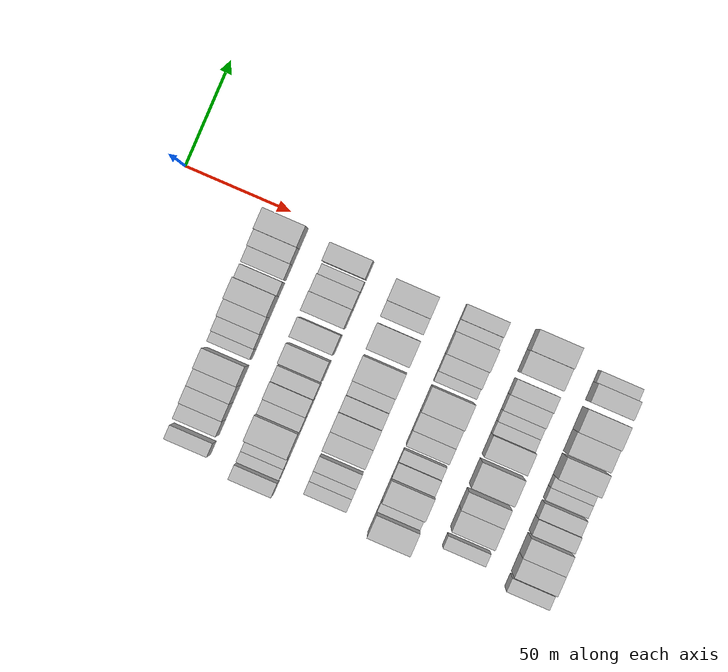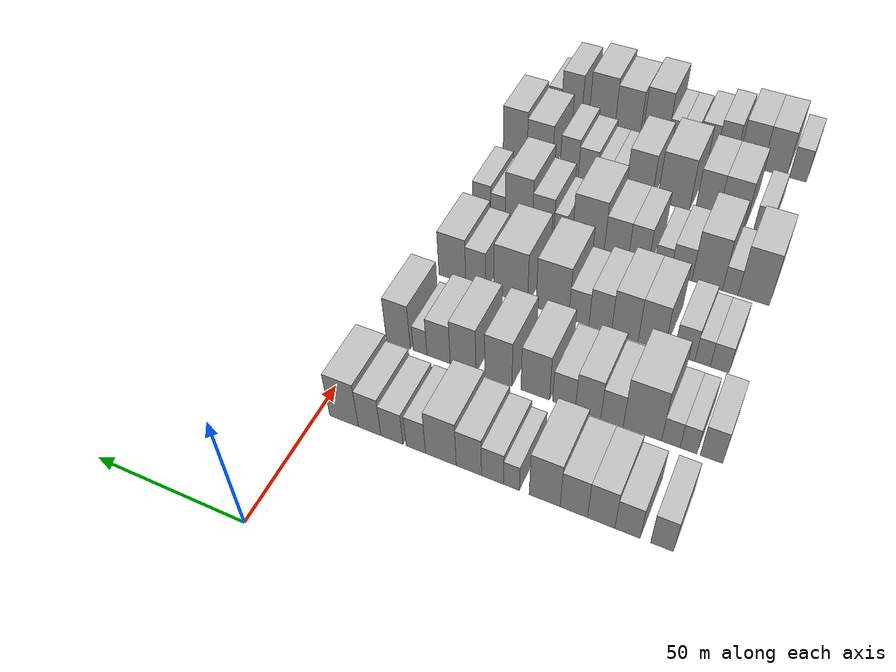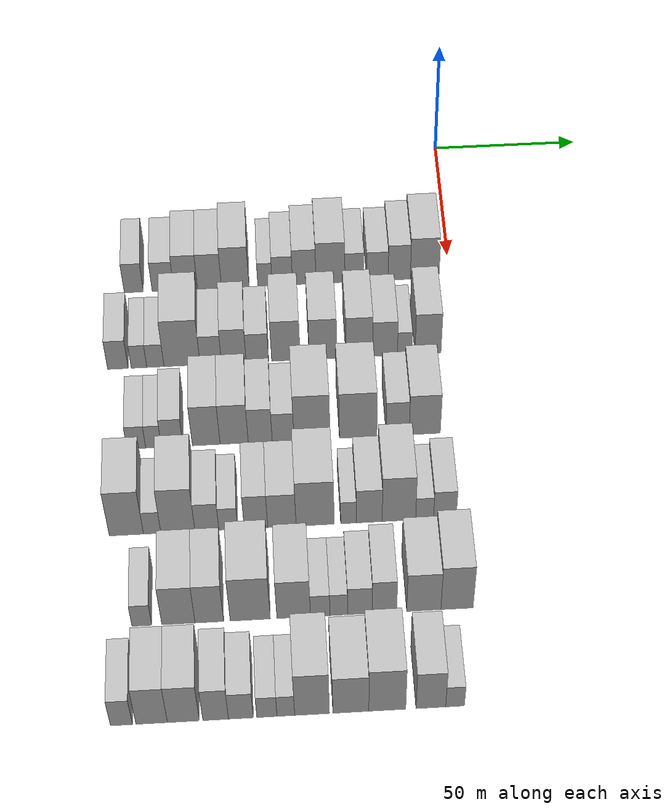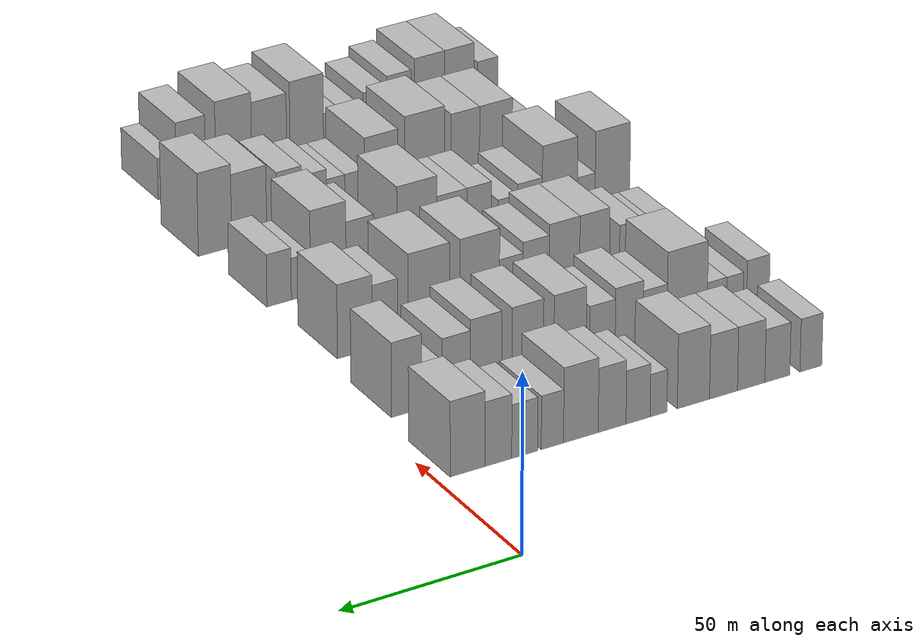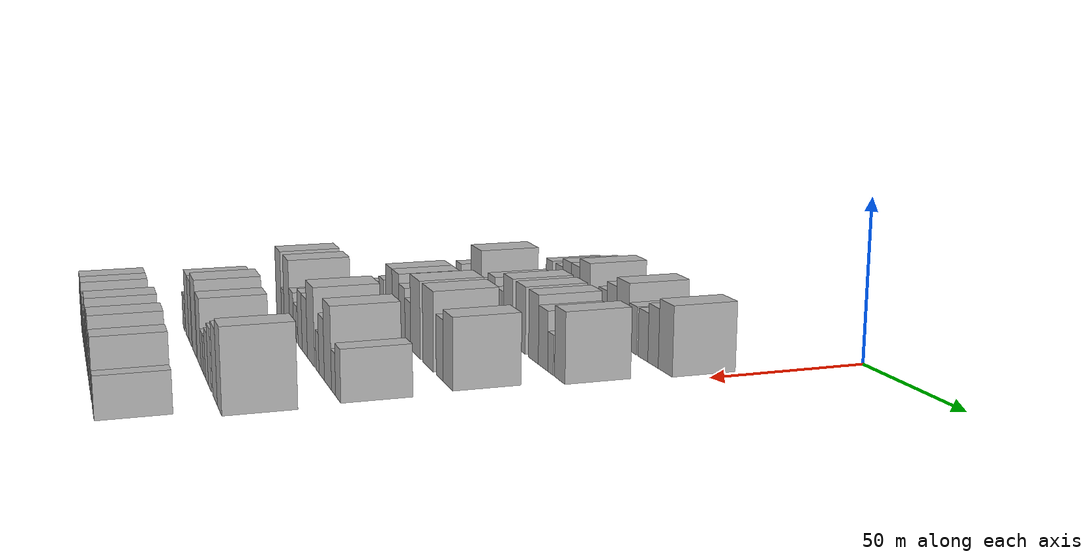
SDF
<sdf version="1.6">
 <world name="default">
  <model name="building_51">
   <static>1</static>
   <pose>50.0000 -107.6121 0 0.000000 0.000000 0.000000</pose>
   <link name="link">
    <pose>0 0 7.50 0 0 0</pose>
    <collision name="collision"><geometry><box><size>20.0000 6.4456 15.0000</size></box></geometry></collision>
    <visual name="visual">
     <cast_shadows>0</cast_shadows>
     <geometry><box><size>20.0000 6.4456 15.0000</size></box></geometry>
     <material>
      <script>
       <uri>model://HANNAS_wall/materials/scripts</uri>
       <uri>model://HANNAS_wall/materials/textures</uri>
       <name>vrc/HANNAS_wall</name>
      </script>
     </material>
    </visual>
   </link>
  </model>
  <model name="building_52">
   <static>1</static>
   <pose>50.0000 -97.7280 0 0.000000 0.000000 0.000000</pose>
   <link name="link">
    <pose>0 0 7.50 0 0 0</pose>
    <collision name="collision"><geometry><box><size>20.0000 7.3226 15.0000</size></box></geometry></collision>
    <visual name="visual">
     <cast_shadows>0</cast_shadows>
     <geometry><box><size>20.0000 7.3226 15.0000</size></box></geometry>
     <material>
      <script>
       <uri>model://HANNAS_wall/materials/scripts</uri>
       <uri>model://HANNAS_wall/materials/textures</uri>
       <name>vrc/HANNAS_wall</name>
      </script>
     </material>
    </visual>
   </link>
  </model>
  <model name="building_53">
   <static>1</static>
   <pose>50.0000 -90.0425 0 0.000000 0.000000 0.000000</pose>
   <link name="link">
    <pose>0 0 9.00 0 0 0</pose>
    <collision name="collision"><geometry><box><size>20.0000 8.0486 18.0000</size></box></geometry></collision>
    <visual name="visual">
     <cast_shadows>0</cast_shadows>
     <geometry><box><size>20.0000 8.0486 18.0000</size></box></geometry>
     <material>
      <script>
       <uri>model://HANNAS_wall/materials/scripts</uri>
       <uri>model://HANNAS_wall/materials/textures</uri>
       <name>vrc/HANNAS_wall</name>
      </script>
     </material>
    </visual>
   </link>
  </model>
  <model name="building_54">
   <static>1</static>
   <pose>50.0000 -81.9507 0 0.000000 0.000000 0.000000</pose>
   <link name="link">
    <pose>0 0 9.00 0 0 0</pose>
    <collision name="collision"><geometry><box><size>20.0000 8.1349 18.0000</size></box></geometry></collision>
    <visual name="visual">
     <cast_shadows>0</cast_shadows>
     <geometry><box><size>20.0000 8.1349 18.0000</size></box></geometry>
     <material>
      <script>
       <uri>model://HANNAS_wall/materials/scripts</uri>
       <uri>model://HANNAS_wall/materials/textures</uri>
       <name>vrc/HANNAS_wall</name>
      </script>
     </material>
    </visual>
   </link>
  </model>
  <model name="building_55">
   <static>1</static>
   <pose>50.0000 -73.2040 0 0.000000 0.000000 0.000000</pose>
   <link name="link">
    <pose>0 0 10.50 0 0 0</pose>
    <collision name="collision"><geometry><box><size>20.0000 9.3585 21.0000</size></box></geometry></collision>
    <visual name="visual">
     <cast_shadows>0</cast_shadows>
     <geometry><box><size>20.0000 9.3585 21.0000</size></box></geometry>
     <material>
      <script>
       <uri>model://HANNAS_wall/materials/scripts</uri>
       <uri>model://HANNAS_wall/materials/textures</uri>
       <name>vrc/HANNAS_wall</name>
      </script>
     </material>
    </visual>
   </link>
  </model>
  <model name="building_56">
   <static>1</static>
   <pose>50.0000 -63.0853 0 0.000000 0.000000 0.000000</pose>
   <link name="link">
    <pose>0 0 6.00 0 0 0</pose>
    <collision name="collision"><geometry><box><size>20.0000 4.8790 12.0000</size></box></geometry></collision>
    <visual name="visual">
     <cast_shadows>0</cast_shadows>
     <geometry><box><size>20.0000 4.8790 12.0000</size></box></geometry>
     <material>
      <script>
       <uri>model://HANNAS_wall/materials/scripts</uri>
       <uri>model://HANNAS_wall/materials/textures</uri>
       <name>vrc/HANNAS_wall</name>
      </script>
     </material>
    </visual>
   </link>
  </model>
  <model name="building_57">
   <static>1</static>
   <pose>50.0000 -57.1907 0 0.000000 0.000000 0.000000</pose>
   <link name="link">
    <pose>0 0 7.50 0 0 0</pose>
    <collision name="collision"><geometry><box><size>20.0000 6.9101 15.0000</size></box></geometry></collision>
    <visual name="visual">
     <cast_shadows>0</cast_shadows>
     <geometry><box><size>20.0000 6.9101 15.0000</size></box></geometry>
     <material>
      <script>
       <uri>model://HANNAS_wall/materials/scripts</uri>
       <uri>model://HANNAS_wall/materials/textures</uri>
       <name>vrc/HANNAS_wall</name>
      </script>
     </material>
    </visual>
   </link>
  </model>
  <model name="building_58">
   <static>1</static>
   <pose>50.0000 -49.7374 0 0.000000 0.000000 0.000000</pose>
   <link name="link">
    <pose>0 0 9.00 0 0 0</pose>
    <collision name="collision"><geometry><box><size>20.0000 7.9965 18.0000</size></box></geometry></collision>
    <visual name="visual">
     <cast_shadows>0</cast_shadows>
     <geometry><box><size>20.0000 7.9965 18.0000</size></box></geometry>
     <material>
      <script>
       <uri>model://HANNAS_wall/materials/scripts</uri>
       <uri>model://HANNAS_wall/materials/textures</uri>
       <name>vrc/HANNAS_wall</name>
      </script>
     </material>
    </visual>
   </link>
  </model>
  <model name="building_59">
   <static>1</static>
   <pose>50.0000 -40.7983 0 0.000000 0.000000 0.000000</pose>
   <link name="link">
    <pose>0 0 10.50 0 0 0</pose>
    <collision name="collision"><geometry><box><size>20.0000 9.8819 21.0000</size></box></geometry></collision>
    <visual name="visual">
     <cast_shadows>0</cast_shadows>
     <geometry><box><size>20.0000 9.8819 21.0000</size></box></geometry>
     <material>
      <script>
       <uri>model://HANNAS_wall/materials/scripts</uri>
       <uri>model://HANNAS_wall/materials/textures</uri>
       <name>vrc/HANNAS_wall</name>
      </script>
     </material>
    </visual>
   </link>
  </model>
  <model name="building_60">
   <static>1</static>
   <pose>50.0000 -32.6744 0 0.000000 0.000000 0.000000</pose>
   <link name="link">
    <pose>0 0 7.50 0 0 0</pose>
    <collision name="collision"><geometry><box><size>20.0000 6.3658 15.0000</size></box></geometry></collision>
    <visual name="visual">
     <cast_shadows>0</cast_shadows>
     <geometry><box><size>20.0000 6.3658 15.0000</size></box></geometry>
     <material>
      <script>
       <uri>model://HANNAS_wall/materials/scripts</uri>
       <uri>model://HANNAS_wall/materials/textures</uri>
       <name>vrc/HANNAS_wall</name>
      </script>
     </material>
    </visual>
   </link>
  </model>
  <model name="building_61">
   <static>1</static>
   <pose>50.0000 -24.8070 0 0.000000 0.000000 0.000000</pose>
   <link name="link">
    <pose>0 0 7.50 0 0 0</pose>
    <collision name="collision"><geometry><box><size>20.0000 7.3690 15.0000</size></box></geometry></collision>
    <visual name="visual">
     <cast_shadows>0</cast_shadows>
     <geometry><box><size>20.0000 7.3690 15.0000</size></box></geometry>
     <material>
      <script>
       <uri>model://HANNAS_wall/materials/scripts</uri>
       <uri>model://HANNAS_wall/materials/textures</uri>
       <name>vrc/HANNAS_wall</name>
      </script>
     </material>
    </visual>
   </link>
  </model>
  <model name="building_62">
   <static>1</static>
   <pose>50.0000 -17.3549 0 0.000000 0.000000 0.000000</pose>
   <link name="link">
    <pose>0 0 9.00 0 0 0</pose>
    <collision name="collision"><geometry><box><size>20.0000 7.5350 18.0000</size></box></geometry></collision>
    <visual name="visual">
     <cast_shadows>0</cast_shadows>
     <geometry><box><size>20.0000 7.5350 18.0000</size></box></geometry>
     <material>
      <script>
       <uri>model://HANNAS_wall/materials/scripts</uri>
       <uri>model://HANNAS_wall/materials/textures</uri>
       <name>vrc/HANNAS_wall</name>
      </script>
     </material>
    </visual>
   </link>
  </model>
  <model name="building_63">
   <static>1</static>
   <pose>50.0000 -8.6829 0 0.000000 0.000000 0.000000</pose>
   <link name="link">
    <pose>0 0 10.50 0 0 0</pose>
    <collision name="collision"><geometry><box><size>20.0000 9.8090 21.0000</size></box></geometry></collision>
    <visual name="visual">
     <cast_shadows>0</cast_shadows>
     <geometry><box><size>20.0000 9.8090 21.0000</size></box></geometry>
     <material>
      <script>
       <uri>model://HANNAS_wall/materials/scripts</uri>
       <uri>model://HANNAS_wall/materials/textures</uri>
       <name>vrc/HANNAS_wall</name>
      </script>
     </material>
    </visual>
   </link>
  </model>
  <model name="building_173">
   <static>1</static>
   <pose>82.0000 -112.4350 0 0.000000 0.000000 0.000000</pose>
   <link name="link">
    <pose>0 0 7.50 0 0 0</pose>
    <collision name="collision"><geometry><box><size>20.0000 6.7424 15.0000</size></box></geometry></collision>
    <visual name="visual">
     <cast_shadows>0</cast_shadows>
     <geometry><box><size>20.0000 6.7424 15.0000</size></box></geometry>
     <material>
      <script>
       <uri>model://HANNAS_wall/materials/scripts</uri>
       <uri>model://HANNAS_wall/materials/textures</uri>
       <name>vrc/HANNAS_wall</name>
      </script>
     </material>
    </visual>
   </link>
  </model>
  <model name="building_174">
   <static>1</static>
   <pose>82.0000 -105.5229 0 0.000000 0.000000 0.000000</pose>
   <link name="link">
    <pose>0 0 6.00 0 0 0</pose>
    <collision name="collision"><geometry><box><size>20.0000 5.0818 12.0000</size></box></geometry></collision>
    <visual name="visual">
     <cast_shadows>0</cast_shadows>
     <geometry><box><size>20.0000 5.0818 12.0000</size></box></geometry>
     <material>
      <script>
       <uri>model://HANNAS_wall/materials/scripts</uri>
       <uri>model://HANNAS_wall/materials/textures</uri>
       <name>vrc/HANNAS_wall</name>
      </script>
     </material>
    </visual>
   </link>
  </model>
  <model name="building_175">
   <static>1</static>
   <pose>82.0000 -100.1564 0 0.000000 0.000000 0.000000</pose>
   <link name="link">
    <pose>0 0 6.00 0 0 0</pose>
    <collision name="collision"><geometry><box><size>20.0000 5.6512 12.0000</size></box></geometry></collision>
    <visual name="visual">
     <cast_shadows>0</cast_shadows>
     <geometry><box><size>20.0000 5.6512 12.0000</size></box></geometry>
     <material>
      <script>
       <uri>model://HANNAS_wall/materials/scripts</uri>
       <uri>model://HANNAS_wall/materials/textures</uri>
       <name>vrc/HANNAS_wall</name>
      </script>
     </material>
    </visual>
   </link>
  </model>
  <model name="building_176">
   <static>1</static>
   <pose>82.0000 -91.3873 0 0.000000 0.000000 0.000000</pose>
   <link name="link">
    <pose>0 0 12.00 0 0 0</pose>
    <collision name="collision"><geometry><box><size>20.0000 11.8871 24.0000</size></box></geometry></collision>
    <visual name="visual">
     <cast_shadows>0</cast_shadows>
     <geometry><box><size>20.0000 11.8871 24.0000</size></box></geometry>
     <material>
      <script>
       <uri>model://HANNAS_wall/materials/scripts</uri>
       <uri>model://HANNAS_wall/materials/textures</uri>
       <name>vrc/HANNAS_wall</name>
      </script>
     </material>
    </visual>
   </link>
  </model>
  <model name="building_177">
   <static>1</static>
   <pose>82.0000 -81.9244 0 0.000000 0.000000 0.000000</pose>
   <link name="link">
    <pose>0 0 7.50 0 0 0</pose>
    <collision name="collision"><geometry><box><size>20.0000 7.0385 15.0000</size></box></geometry></collision>
    <visual name="visual">
     <cast_shadows>0</cast_shadows>
     <geometry><box><size>20.0000 7.0385 15.0000</size></box></geometry>
     <material>
      <script>
       <uri>model://HANNAS_wall/materials/scripts</uri>
       <uri>model://HANNAS_wall/materials/textures</uri>
       <name>vrc/HANNAS_wall</name>
      </script>
     </material>
    </visual>
   </link>
  </model>
  <model name="building_178">
   <static>1</static>
   <pose>82.0000 -74.3344 0 0.000000 0.000000 0.000000</pose>
   <link name="link">
    <pose>0 0 9.00 0 0 0</pose>
    <collision name="collision"><geometry><box><size>20.0000 8.1415 18.0000</size></box></geometry></collision>
    <visual name="visual">
     <cast_shadows>0</cast_shadows>
     <geometry><box><size>20.0000 8.1415 18.0000</size></box></geometry>
     <material>
      <script>
       <uri>model://HANNAS_wall/materials/scripts</uri>
       <uri>model://HANNAS_wall/materials/textures</uri>
       <name>vrc/HANNAS_wall</name>
      </script>
     </material>
    </visual>
   </link>
  </model>
  <model name="building_179">
   <static>1</static>
   <pose>82.0000 -66.5594 0 0.000000 0.000000 0.000000</pose>
   <link name="link">
    <pose>0 0 7.50 0 0 0</pose>
    <collision name="collision"><geometry><box><size>20.0000 7.4084 15.0000</size></box></geometry></collision>
    <visual name="visual">
     <cast_shadows>0</cast_shadows>
     <geometry><box><size>20.0000 7.4084 15.0000</size></box></geometry>
     <material>
      <script>
       <uri>model://HANNAS_wall/materials/scripts</uri>
       <uri>model://HANNAS_wall/materials/textures</uri>
       <name>vrc/HANNAS_wall</name>
      </script>
     </material>
    </visual>
   </link>
  </model>
  <model name="building_180">
   <static>1</static>
   <pose>82.0000 -57.1435 0 0.000000 0.000000 0.000000</pose>
   <link name="link">
    <pose>0 0 10.50 0 0 0</pose>
    <collision name="collision"><geometry><box><size>20.0000 9.4235 21.0000</size></box></geometry></collision>
    <visual name="visual">
     <cast_shadows>0</cast_shadows>
     <geometry><box><size>20.0000 9.4235 21.0000</size></box></geometry>
     <material>
      <script>
       <uri>model://HANNAS_wall/materials/scripts</uri>
       <uri>model://HANNAS_wall/materials/textures</uri>
       <name>vrc/HANNAS_wall</name>
      </script>
     </material>
    </visual>
   </link>
  </model>
  <model name="building_181">
   <static>1</static>
   <pose>82.0000 -44.8731 0 0.000000 0.000000 0.000000</pose>
   <link name="link">
    <pose>0 0 10.50 0 0 0</pose>
    <collision name="collision"><geometry><box><size>20.0000 9.1171 21.0000</size></box></geometry></collision>
    <visual name="visual">
     <cast_shadows>0</cast_shadows>
     <geometry><box><size>20.0000 9.1171 21.0000</size></box></geometry>
     <material>
      <script>
       <uri>model://HANNAS_wall/materials/scripts</uri>
       <uri>model://HANNAS_wall/materials/textures</uri>
       <name>vrc/HANNAS_wall</name>
      </script>
     </material>
    </visual>
   </link>
  </model>
  <model name="building_182">
   <static>1</static>
   <pose>82.0000 -32.8745 0 0.000000 0.000000 0.000000</pose>
   <link name="link">
    <pose>0 0 10.50 0 0 0</pose>
    <collision name="collision"><geometry><box><size>20.0000 8.8801 21.0000</size></box></geometry></collision>
    <visual name="visual">
     <cast_shadows>0</cast_shadows>
     <geometry><box><size>20.0000 8.8801 21.0000</size></box></geometry>
     <material>
      <script>
       <uri>model://HANNAS_wall/materials/scripts</uri>
       <uri>model://HANNAS_wall/materials/textures</uri>
       <name>vrc/HANNAS_wall</name>
      </script>
     </material>
    </visual>
   </link>
  </model>
  <model name="building_183">
   <static>1</static>
   <pose>82.0000 -24.3602 0 0.000000 0.000000 0.000000</pose>
   <link name="link">
    <pose>0 0 9.00 0 0 0</pose>
    <collision name="collision"><geometry><box><size>20.0000 8.1486 18.0000</size></box></geometry></collision>
    <visual name="visual">
     <cast_shadows>0</cast_shadows>
     <geometry><box><size>20.0000 8.1486 18.0000</size></box></geometry>
     <material>
      <script>
       <uri>model://HANNAS_wall/materials/scripts</uri>
       <uri>model://HANNAS_wall/materials/textures</uri>
       <name>vrc/HANNAS_wall</name>
      </script>
     </material>
    </visual>
   </link>
  </model>
  <model name="building_184">
   <static>1</static>
   <pose>82.0000 -17.8740 0 0.000000 0.000000 0.000000</pose>
   <link name="link">
    <pose>0 0 6.00 0 0 0</pose>
    <collision name="collision"><geometry><box><size>20.0000 4.8238 12.0000</size></box></geometry></collision>
    <visual name="visual">
     <cast_shadows>0</cast_shadows>
     <geometry><box><size>20.0000 4.8238 12.0000</size></box></geometry>
     <material>
      <script>
       <uri>model://HANNAS_wall/materials/scripts</uri>
       <uri>model://HANNAS_wall/materials/textures</uri>
       <name>vrc/HANNAS_wall</name>
      </script>
     </material>
    </visual>
   </link>
  </model>
  <model name="building_185">
   <static>1</static>
   <pose>82.0000 -10.1672 0 0.000000 0.000000 0.000000</pose>
   <link name="link">
    <pose>0 0 10.50 0 0 0</pose>
    <collision name="collision"><geometry><box><size>20.0000 8.5898 21.0000</size></box></geometry></collision>
    <visual name="visual">
     <cast_shadows>0</cast_shadows>
     <geometry><box><size>20.0000 8.5898 21.0000</size></box></geometry>
     <material>
      <script>
       <uri>model://HANNAS_wall/materials/scripts</uri>
       <uri>model://HANNAS_wall/materials/textures</uri>
       <name>vrc/HANNAS_wall</name>
      </script>
     </material>
    </visual>
   </link>
  </model>
  <model name="building_294">
   <static>1</static>
   <pose>114.0000 -106.0723 0 0.000000 0.000000 0.000000</pose>
   <link name="link">
    <pose>0 0 6.00 0 0 0</pose>
    <collision name="collision"><geometry><box><size>20.0000 5.9864 12.0000</size></box></geometry></collision>
    <visual name="visual">
     <cast_shadows>0</cast_shadows>
     <geometry><box><size>20.0000 5.9864 12.0000</size></box></geometry>
     <material>
      <script>
       <uri>model://HANNAS_wall/materials/scripts</uri>
       <uri>model://HANNAS_wall/materials/textures</uri>
       <name>vrc/HANNAS_wall</name>
      </script>
     </material>
    </visual>
   </link>
  </model>
  <model name="building_295">
   <static>1</static>
   <pose>114.0000 -100.5867 0 0.000000 0.000000 0.000000</pose>
   <link name="link">
    <pose>0 0 6.00 0 0 0</pose>
    <collision name="collision"><geometry><box><size>20.0000 4.9848 12.0000</size></box></geometry></collision>
    <visual name="visual">
     <cast_shadows>0</cast_shadows>
     <geometry><box><size>20.0000 4.9848 12.0000</size></box></geometry>
     <material>
      <script>
       <uri>model://HANNAS_wall/materials/scripts</uri>
       <uri>model://HANNAS_wall/materials/textures</uri>
       <name>vrc/HANNAS_wall</name>
      </script>
     </material>
    </visual>
   </link>
  </model>
  <model name="building_296">
   <static>1</static>
   <pose>114.0000 -94.6535 0 0.000000 0.000000 0.000000</pose>
   <link name="link">
    <pose>0 0 7.50 0 0 0</pose>
    <collision name="collision"><geometry><box><size>20.0000 6.8817 15.0000</size></box></geometry></collision>
    <visual name="visual">
     <cast_shadows>0</cast_shadows>
     <geometry><box><size>20.0000 6.8817 15.0000</size></box></geometry>
     <material>
      <script>
       <uri>model://HANNAS_wall/materials/scripts</uri>
       <uri>model://HANNAS_wall/materials/textures</uri>
       <name>vrc/HANNAS_wall</name>
      </script>
     </material>
    </visual>
   </link>
  </model>
  <model name="building_297">
   <static>1</static>
   <pose>114.0000 -83.7921 0 0.000000 0.000000 0.000000</pose>
   <link name="link">
    <pose>0 0 10.50 0 0 0</pose>
    <collision name="collision"><geometry><box><size>20.0000 8.8411 21.0000</size></box></geometry></collision>
    <visual name="visual">
     <cast_shadows>0</cast_shadows>
     <geometry><box><size>20.0000 8.8411 21.0000</size></box></geometry>
     <material>
      <script>
       <uri>model://HANNAS_wall/materials/scripts</uri>
       <uri>model://HANNAS_wall/materials/textures</uri>
       <name>vrc/HANNAS_wall</name>
      </script>
     </material>
    </visual>
   </link>
  </model>
  <model name="building_298">
   <static>1</static>
   <pose>114.0000 -74.8749 0 0.000000 0.000000 0.000000</pose>
   <link name="link">
    <pose>0 0 10.50 0 0 0</pose>
    <collision name="collision"><geometry><box><size>20.0000 8.9933 21.0000</size></box></geometry></collision>
    <visual name="visual">
     <cast_shadows>0</cast_shadows>
     <geometry><box><size>20.0000 8.9933 21.0000</size></box></geometry>
     <material>
      <script>
       <uri>model://HANNAS_wall/materials/scripts</uri>
       <uri>model://HANNAS_wall/materials/textures</uri>
       <name>vrc/HANNAS_wall</name>
      </script>
     </material>
    </visual>
   </link>
  </model>
  <model name="building_299">
   <static>1</static>
   <pose>114.0000 -66.5477 0 0.000000 0.000000 0.000000</pose>
   <link name="link">
    <pose>0 0 9.00 0 0 0</pose>
    <collision name="collision"><geometry><box><size>20.0000 7.6612 18.0000</size></box></geometry></collision>
    <visual name="visual">
     <cast_shadows>0</cast_shadows>
     <geometry><box><size>20.0000 7.6612 18.0000</size></box></geometry>
     <material>
      <script>
       <uri>model://HANNAS_wall/materials/scripts</uri>
       <uri>model://HANNAS_wall/materials/textures</uri>
       <name>vrc/HANNAS_wall</name>
      </script>
     </material>
    </visual>
   </link>
  </model>
  <model name="building_300">
   <static>1</static>
   <pose>114.0000 -59.2431 0 0.000000 0.000000 0.000000</pose>
   <link name="link">
    <pose>0 0 7.50 0 0 0</pose>
    <collision name="collision"><geometry><box><size>20.0000 6.9480 15.0000</size></box></geometry></collision>
    <visual name="visual">
     <cast_shadows>0</cast_shadows>
     <geometry><box><size>20.0000 6.9480 15.0000</size></box></geometry>
     <material>
      <script>
       <uri>model://HANNAS_wall/materials/scripts</uri>
       <uri>model://HANNAS_wall/materials/textures</uri>
       <name>vrc/HANNAS_wall</name>
      </script>
     </material>
    </visual>
   </link>
  </model>
  <model name="building_301">
   <static>1</static>
   <pose>114.0000 -49.9883 0 0.000000 0.000000 0.000000</pose>
   <link name="link">
    <pose>0 0 12.00 0 0 0</pose>
    <collision name="collision"><geometry><box><size>20.0000 11.5617 24.0000</size></box></geometry></collision>
    <visual name="visual">
     <cast_shadows>0</cast_shadows>
     <geometry><box><size>20.0000 11.5617 24.0000</size></box></geometry>
     <material>
      <script>
       <uri>model://HANNAS_wall/materials/scripts</uri>
       <uri>model://HANNAS_wall/materials/textures</uri>
       <name>vrc/HANNAS_wall</name>
      </script>
     </material>
    </visual>
   </link>
  </model>
  <model name="building_302">
   <static>1</static>
   <pose>114.0000 -35.2086 0 0.000000 0.000000 0.000000</pose>
   <link name="link">
    <pose>0 0 12.00 0 0 0</pose>
    <collision name="collision"><geometry><box><size>20.0000 11.9977 24.0000</size></box></geometry></collision>
    <visual name="visual">
     <cast_shadows>0</cast_shadows>
     <geometry><box><size>20.0000 11.9977 24.0000</size></box></geometry>
     <material>
      <script>
       <uri>model://HANNAS_wall/materials/scripts</uri>
       <uri>model://HANNAS_wall/materials/textures</uri>
       <name>vrc/HANNAS_wall</name>
      </script>
     </material>
    </visual>
   </link>
  </model>
  <model name="building_303">
   <static>1</static>
   <pose>114.0000 -22.5201 0 0.000000 0.000000 0.000000</pose>
   <link name="link">
    <pose>0 0 9.00 0 0 0</pose>
    <collision name="collision"><geometry><box><size>20.0000 7.3791 18.0000</size></box></geometry></collision>
    <visual name="visual">
     <cast_shadows>0</cast_shadows>
     <geometry><box><size>20.0000 7.3791 18.0000</size></box></geometry>
     <material>
      <script>
       <uri>model://HANNAS_wall/materials/scripts</uri>
       <uri>model://HANNAS_wall/materials/textures</uri>
       <name>vrc/HANNAS_wall</name>
      </script>
     </material>
    </visual>
   </link>
  </model>
  <model name="building_304">
   <static>1</static>
   <pose>114.0000 -13.8351 0 0.000000 0.000000 0.000000</pose>
   <link name="link">
    <pose>0 0 10.50 0 0 0</pose>
    <collision name="collision"><geometry><box><size>20.0000 9.9910 21.0000</size></box></geometry></collision>
    <visual name="visual">
     <cast_shadows>0</cast_shadows>
     <geometry><box><size>20.0000 9.9910 21.0000</size></box></geometry>
     <material>
      <script>
       <uri>model://HANNAS_wall/materials/scripts</uri>
       <uri>model://HANNAS_wall/materials/textures</uri>
       <name>vrc/HANNAS_wall</name>
      </script>
     </material>
    </visual>
   </link>
  </model>
  <model name="building_418">
   <static>1</static>
   <pose>146.0000 -108.7850 0 0.000000 0.000000 0.000000</pose>
   <link name="link">
    <pose>0 0 12.00 0 0 0</pose>
    <collision name="collision"><geometry><box><size>20.0000 10.5022 24.0000</size></box></geometry></collision>
    <visual name="visual">
     <cast_shadows>0</cast_shadows>
     <geometry><box><size>20.0000 10.5022 24.0000</size></box></geometry>
     <material>
      <script>
       <uri>model://HANNAS_wall/materials/scripts</uri>
       <uri>model://HANNAS_wall/materials/textures</uri>
       <name>vrc/HANNAS_wall</name>
      </script>
     </material>
    </visual>
   </link>
  </model>
  <model name="building_419">
   <static>1</static>
   <pose>146.0000 -100.8500 0 0.000000 0.000000 0.000000</pose>
   <link name="link">
    <pose>0 0 6.00 0 0 0</pose>
    <collision name="collision"><geometry><box><size>20.0000 5.3677 12.0000</size></box></geometry></collision>
    <visual name="visual">
     <cast_shadows>0</cast_shadows>
     <geometry><box><size>20.0000 5.3677 12.0000</size></box></geometry>
     <material>
      <script>
       <uri>model://HANNAS_wall/materials/scripts</uri>
       <uri>model://HANNAS_wall/materials/textures</uri>
       <name>vrc/HANNAS_wall</name>
      </script>
     </material>
    </visual>
   </link>
  </model>
  <model name="building_420">
   <static>1</static>
   <pose>146.0000 -92.9082 0 0.000000 0.000000 0.000000</pose>
   <link name="link">
    <pose>0 0 12.00 0 0 0</pose>
    <collision name="collision"><geometry><box><size>20.0000 10.5159 24.0000</size></box></geometry></collision>
    <visual name="visual">
     <cast_shadows>0</cast_shadows>
     <geometry><box><size>20.0000 10.5159 24.0000</size></box></geometry>
     <material>
      <script>
       <uri>model://HANNAS_wall/materials/scripts</uri>
       <uri>model://HANNAS_wall/materials/textures</uri>
       <name>vrc/HANNAS_wall</name>
      </script>
     </material>
    </visual>
   </link>
  </model>
  <model name="building_421">
   <static>1</static>
   <pose>146.0000 -83.9518 0 0.000000 0.000000 0.000000</pose>
   <link name="link">
    <pose>0 0 7.50 0 0 0</pose>
    <collision name="collision"><geometry><box><size>20.0000 7.3970 15.0000</size></box></geometry></collision>
    <visual name="visual">
     <cast_shadows>0</cast_shadows>
     <geometry><box><size>20.0000 7.3970 15.0000</size></box></geometry>
     <material>
      <script>
       <uri>model://HANNAS_wall/materials/scripts</uri>
       <uri>model://HANNAS_wall/materials/textures</uri>
       <name>vrc/HANNAS_wall</name>
      </script>
     </material>
    </visual>
   </link>
  </model>
  <model name="building_422">
   <static>1</static>
   <pose>146.0000 -77.3259 0 0.000000 0.000000 0.000000</pose>
   <link name="link">
    <pose>0 0 6.00 0 0 0</pose>
    <collision name="collision"><geometry><box><size>20.0000 5.8548 12.0000</size></box></geometry></collision>
    <visual name="visual">
     <cast_shadows>0</cast_shadows>
     <geometry><box><size>20.0000 5.8548 12.0000</size></box></geometry>
     <material>
      <script>
       <uri>model://HANNAS_wall/materials/scripts</uri>
       <uri>model://HANNAS_wall/materials/textures</uri>
       <name>vrc/HANNAS_wall</name>
      </script>
     </material>
    </visual>
   </link>
  </model>
  <model name="building_423">
   <static>1</static>
   <pose>146.0000 -68.7788 0 0.000000 0.000000 0.000000</pose>
   <link name="link">
    <pose>0 0 9.00 0 0 0</pose>
    <collision name="collision"><geometry><box><size>20.0000 7.2393 18.0000</size></box></geometry></collision>
    <visual name="visual">
     <cast_shadows>0</cast_shadows>
     <geometry><box><size>20.0000 7.2393 18.0000</size></box></geometry>
     <material>
      <script>
       <uri>model://HANNAS_wall/materials/scripts</uri>
       <uri>model://HANNAS_wall/materials/textures</uri>
       <name>vrc/HANNAS_wall</name>
      </script>
     </material>
    </visual>
   </link>
  </model>
  <model name="building_424">
   <static>1</static>
   <pose>146.0000 -60.7577 0 0.000000 0.000000 0.000000</pose>
   <link name="link">
    <pose>0 0 9.00 0 0 0</pose>
    <collision name="collision"><geometry><box><size>20.0000 8.8028 18.0000</size></box></geometry></collision>
    <visual name="visual">
     <cast_shadows>0</cast_shadows>
     <geometry><box><size>20.0000 8.8028 18.0000</size></box></geometry>
     <material>
      <script>
       <uri>model://HANNAS_wall/materials/scripts</uri>
       <uri>model://HANNAS_wall/materials/textures</uri>
       <name>vrc/HANNAS_wall</name>
      </script>
     </material>
    </visual>
   </link>
  </model>
  <model name="building_425">
   <static>1</static>
   <pose>146.0000 -50.4419 0 0.000000 0.000000 0.000000</pose>
   <link name="link">
    <pose>0 0 12.00 0 0 0</pose>
    <collision name="collision"><geometry><box><size>20.0000 11.8288 24.0000</size></box></geometry></collision>
    <visual name="visual">
     <cast_shadows>0</cast_shadows>
     <geometry><box><size>20.0000 11.8288 24.0000</size></box></geometry>
     <material>
      <script>
       <uri>model://HANNAS_wall/materials/scripts</uri>
       <uri>model://HANNAS_wall/materials/textures</uri>
       <name>vrc/HANNAS_wall</name>
      </script>
     </material>
    </visual>
   </link>
  </model>
  <model name="building_426">
   <static>1</static>
   <pose>146.0000 -40.1002 0 0.000000 0.000000 0.000000</pose>
   <link name="link">
    <pose>0 0 6.00 0 0 0</pose>
    <collision name="collision"><geometry><box><size>20.0000 4.8547 12.0000</size></box></geometry></collision>
    <visual name="visual">
     <cast_shadows>0</cast_shadows>
     <geometry><box><size>20.0000 4.8547 12.0000</size></box></geometry>
     <material>
      <script>
       <uri>model://HANNAS_wall/materials/scripts</uri>
       <uri>model://HANNAS_wall/materials/textures</uri>
       <name>vrc/HANNAS_wall</name>
      </script>
     </material>
    </visual>
   </link>
  </model>
  <model name="building_427">
   <static>1</static>
   <pose>146.0000 -33.6584 0 0.000000 0.000000 0.000000</pose>
   <link name="link">
    <pose>0 0 9.00 0 0 0</pose>
    <collision name="collision"><geometry><box><size>20.0000 8.0288 18.0000</size></box></geometry></collision>
    <visual name="visual">
     <cast_shadows>0</cast_shadows>
     <geometry><box><size>20.0000 8.0288 18.0000</size></box></geometry>
     <material>
      <script>
       <uri>model://HANNAS_wall/materials/scripts</uri>
       <uri>model://HANNAS_wall/materials/textures</uri>
       <name>vrc/HANNAS_wall</name>
      </script>
     </material>
    </visual>
   </link>
  </model>
  <model name="building_428">
   <static>1</static>
   <pose>146.0000 -24.4499 0 0.000000 0.000000 0.000000</pose>
   <link name="link">
    <pose>0 0 12.00 0 0 0</pose>
    <collision name="collision"><geometry><box><size>20.0000 10.3883 24.0000</size></box></geometry></collision>
    <visual name="visual">
     <cast_shadows>0</cast_shadows>
     <geometry><box><size>20.0000 10.3883 24.0000</size></box></geometry>
     <material>
      <script>
       <uri>model://HANNAS_wall/materials/scripts</uri>
       <uri>model://HANNAS_wall/materials/textures</uri>
       <name>vrc/HANNAS_wall</name>
      </script>
     </material>
    </visual>
   </link>
  </model>
  <model name="building_429">
   <static>1</static>
   <pose>146.0000 -16.4661 0 0.000000 0.000000 0.000000</pose>
   <link name="link">
    <pose>0 0 6.00 0 0 0</pose>
    <collision name="collision"><geometry><box><size>20.0000 5.5792 12.0000</size></box></geometry></collision>
    <visual name="visual">
     <cast_shadows>0</cast_shadows>
     <geometry><box><size>20.0000 5.5792 12.0000</size></box></geometry>
     <material>
      <script>
       <uri>model://HANNAS_wall/materials/scripts</uri>
       <uri>model://HANNAS_wall/materials/textures</uri>
       <name>vrc/HANNAS_wall</name>
      </script>
     </material>
    </visual>
   </link>
  </model>
  <model name="building_430">
   <static>1</static>
   <pose>146.0000 -10.1466 0 0.000000 0.000000 0.000000</pose>
   <link name="link">
    <pose>0 0 7.50 0 0 0</pose>
    <collision name="collision"><geometry><box><size>20.0000 7.0599 15.0000</size></box></geometry></collision>
    <visual name="visual">
     <cast_shadows>0</cast_shadows>
     <geometry><box><size>20.0000 7.0599 15.0000</size></box></geometry>
     <material>
      <script>
       <uri>model://HANNAS_wall/materials/scripts</uri>
       <uri>model://HANNAS_wall/materials/textures</uri>
       <name>vrc/HANNAS_wall</name>
      </script>
     </material>
    </visual>
   </link>
  </model>
  <model name="building_538">
   <static>1</static>
   <pose>178.0000 -103.7288 0 0.000000 0.000000 0.000000</pose>
   <link name="link">
    <pose>0 0 6.00 0 0 0</pose>
    <collision name="collision"><geometry><box><size>20.0000 5.8917 12.0000</size></box></geometry></collision>
    <visual name="visual">
     <cast_shadows>0</cast_shadows>
     <geometry><box><size>20.0000 5.8917 12.0000</size></box></geometry>
     <material>
      <script>
       <uri>model://HANNAS_wall/materials/scripts</uri>
       <uri>model://HANNAS_wall/materials/textures</uri>
       <name>vrc/HANNAS_wall</name>
      </script>
     </material>
    </visual>
   </link>
  </model>
  <model name="building_539">
   <static>1</static>
   <pose>178.0000 -92.8314 0 0.000000 0.000000 0.000000</pose>
   <link name="link">
    <pose>0 0 10.50 0 0 0</pose>
    <collision name="collision"><geometry><box><size>20.0000 9.9030 21.0000</size></box></geometry></collision>
    <visual name="visual">
     <cast_shadows>0</cast_shadows>
     <geometry><box><size>20.0000 9.9030 21.0000</size></box></geometry>
     <material>
      <script>
       <uri>model://HANNAS_wall/materials/scripts</uri>
       <uri>model://HANNAS_wall/materials/textures</uri>
       <name>vrc/HANNAS_wall</name>
      </script>
     </material>
    </visual>
   </link>
  </model>
  <model name="building_540">
   <static>1</static>
   <pose>178.0000 -83.6156 0 0.000000 0.000000 0.000000</pose>
   <link name="link">
    <pose>0 0 10.50 0 0 0</pose>
    <collision name="collision"><geometry><box><size>20.0000 8.5286 21.0000</size></box></geometry></collision>
    <visual name="visual">
     <cast_shadows>0</cast_shadows>
     <geometry><box><size>20.0000 8.5286 21.0000</size></box></geometry>
     <material>
      <script>
       <uri>model://HANNAS_wall/materials/scripts</uri>
       <uri>model://HANNAS_wall/materials/textures</uri>
       <name>vrc/HANNAS_wall</name>
      </script>
     </material>
    </visual>
   </link>
  </model>
  <model name="building_541">
   <static>1</static>
   <pose>178.0000 -71.3595 0 0.000000 0.000000 0.000000</pose>
   <link name="link">
    <pose>0 0 12.00 0 0 0</pose>
    <collision name="collision"><geometry><box><size>20.0000 11.9836 24.0000</size></box></geometry></collision>
    <visual name="visual">
     <cast_shadows>0</cast_shadows>
     <geometry><box><size>20.0000 11.9836 24.0000</size></box></geometry>
     <material>
      <script>
       <uri>model://HANNAS_wall/materials/scripts</uri>
       <uri>model://HANNAS_wall/materials/textures</uri>
       <name>vrc/HANNAS_wall</name>
      </script>
     </material>
    </visual>
   </link>
  </model>
  <model name="building_542">
   <static>1</static>
   <pose>178.0000 -58.3529 0 0.000000 0.000000 0.000000</pose>
   <link name="link">
    <pose>0 0 10.50 0 0 0</pose>
    <collision name="collision"><geometry><box><size>20.0000 10.0295 21.0000</size></box></geometry></collision>
    <visual name="visual">
     <cast_shadows>0</cast_shadows>
     <geometry><box><size>20.0000 10.0295 21.0000</size></box></geometry>
     <material>
      <script>
       <uri>model://HANNAS_wall/materials/scripts</uri>
       <uri>model://HANNAS_wall/materials/textures</uri>
       <name>vrc/HANNAS_wall</name>
      </script>
     </material>
    </visual>
   </link>
  </model>
  <model name="building_543">
   <static>1</static>
   <pose>178.0000 -50.4193 0 0.000000 0.000000 0.000000</pose>
   <link name="link">
    <pose>0 0 6.00 0 0 0</pose>
    <collision name="collision"><geometry><box><size>20.0000 5.8378 12.0000</size></box></geometry></collision>
    <visual name="visual">
     <cast_shadows>0</cast_shadows>
     <geometry><box><size>20.0000 5.8378 12.0000</size></box></geometry>
     <material>
      <script>
       <uri>model://HANNAS_wall/materials/scripts</uri>
       <uri>model://HANNAS_wall/materials/textures</uri>
       <name>vrc/HANNAS_wall</name>
      </script>
     </material>
    </visual>
   </link>
  </model>
  <model name="building_544">
   <static>1</static>
   <pose>178.0000 -44.8338 0 0.000000 0.000000 0.000000</pose>
   <link name="link">
    <pose>0 0 6.00 0 0 0</pose>
    <collision name="collision"><geometry><box><size>20.0000 5.3333 12.0000</size></box></geometry></collision>
    <visual name="visual">
     <cast_shadows>0</cast_shadows>
     <geometry><box><size>20.0000 5.3333 12.0000</size></box></geometry>
     <material>
      <script>
       <uri>model://HANNAS_wall/materials/scripts</uri>
       <uri>model://HANNAS_wall/materials/textures</uri>
       <name>vrc/HANNAS_wall</name>
      </script>
     </material>
    </visual>
   </link>
  </model>
  <model name="building_545">
   <static>1</static>
   <pose>178.0000 -38.4570 0 0.000000 0.000000 0.000000</pose>
   <link name="link">
    <pose>0 0 7.50 0 0 0</pose>
    <collision name="collision"><geometry><box><size>20.0000 7.4203 15.0000</size></box></geometry></collision>
    <visual name="visual">
     <cast_shadows>0</cast_shadows>
     <geometry><box><size>20.0000 7.4203 15.0000</size></box></geometry>
     <material>
      <script>
       <uri>model://HANNAS_wall/materials/scripts</uri>
       <uri>model://HANNAS_wall/materials/textures</uri>
       <name>vrc/HANNAS_wall</name>
      </script>
     </material>
    </visual>
   </link>
  </model>
  <model name="building_546">
   <static>1</static>
   <pose>178.0000 -31.0847 0 0.000000 0.000000 0.000000</pose>
   <link name="link">
    <pose>0 0 9.00 0 0 0</pose>
    <collision name="collision"><geometry><box><size>20.0000 7.3244 18.0000</size></box></geometry></collision>
    <visual name="visual">
     <cast_shadows>0</cast_shadows>
     <geometry><box><size>20.0000 7.3244 18.0000</size></box></geometry>
     <material>
      <script>
       <uri>model://HANNAS_wall/materials/scripts</uri>
       <uri>model://HANNAS_wall/materials/textures</uri>
       <name>vrc/HANNAS_wall</name>
      </script>
     </material>
    </visual>
   </link>
  </model>
  <model name="building_547">
   <static>1</static>
   <pose>178.0000 -19.2814 0 0.000000 0.000000 0.000000</pose>
   <link name="link">
    <pose>0 0 10.50 0 0 0</pose>
    <collision name="collision"><geometry><box><size>20.0000 10.2821 21.0000</size></box></geometry></collision>
    <visual name="visual">
     <cast_shadows>0</cast_shadows>
     <geometry><box><size>20.0000 10.2821 21.0000</size></box></geometry>
     <material>
      <script>
       <uri>model://HANNAS_wall/materials/scripts</uri>
       <uri>model://HANNAS_wall/materials/textures</uri>
       <name>vrc/HANNAS_wall</name>
      </script>
     </material>
    </visual>
   </link>
  </model>
  <model name="building_548">
   <static>1</static>
   <pose>178.0000 -9.2892 0 0.000000 0.000000 0.000000</pose>
   <link name="link">
    <pose>0 0 12.00 0 0 0</pose>
    <collision name="collision"><geometry><box><size>20.0000 9.7024 24.0000</size></box></geometry></collision>
    <visual name="visual">
     <cast_shadows>0</cast_shadows>
     <geometry><box><size>20.0000 9.7024 24.0000</size></box></geometry>
     <material>
      <script>
       <uri>model://HANNAS_wall/materials/scripts</uri>
       <uri>model://HANNAS_wall/materials/textures</uri>
       <name>vrc/HANNAS_wall</name>
      </script>
     </material>
    </visual>
   </link>
  </model>
  <model name="building_656">
   <static>1</static>
   <pose>210.0000 -109.3260 0 0.000000 0.000000 0.000000</pose>
   <link name="link">
    <pose>0 0 7.50 0 0 0</pose>
    <collision name="collision"><geometry><box><size>20.0000 6.3360 15.0000</size></box></geometry></collision>
    <visual name="visual">
     <cast_shadows>0</cast_shadows>
     <geometry><box><size>20.0000 6.3360 15.0000</size></box></geometry>
     <material>
      <script>
       <uri>model://HANNAS_wall/materials/scripts</uri>
       <uri>model://HANNAS_wall/materials/textures</uri>
       <name>vrc/HANNAS_wall</name>
      </script>
     </material>
    </visual>
   </link>
  </model>
  <model name="building_657">
   <static>1</static>
   <pose>210.0000 -100.6249 0 0.000000 0.000000 0.000000</pose>
   <link name="link">
    <pose>0 0 10.50 0 0 0</pose>
    <collision name="collision"><geometry><box><size>20.0000 9.0661 21.0000</size></box></geometry></collision>
    <visual name="visual">
     <cast_shadows>0</cast_shadows>
     <geometry><box><size>20.0000 9.0661 21.0000</size></box></geometry>
     <material>
      <script>
       <uri>model://HANNAS_wall/materials/scripts</uri>
       <uri>model://HANNAS_wall/materials/textures</uri>
       <name>vrc/HANNAS_wall</name>
      </script>
     </material>
    </visual>
   </link>
  </model>
  <model name="building_658">
   <static>1</static>
   <pose>210.0000 -91.4784 0 0.000000 0.000000 0.000000</pose>
   <link name="link">
    <pose>0 0 10.50 0 0 0</pose>
    <collision name="collision"><geometry><box><size>20.0000 9.2270 21.0000</size></box></geometry></collision>
    <visual name="visual">
     <cast_shadows>0</cast_shadows>
     <geometry><box><size>20.0000 9.2270 21.0000</size></box></geometry>
     <material>
      <script>
       <uri>model://HANNAS_wall/materials/scripts</uri>
       <uri>model://HANNAS_wall/materials/textures</uri>
       <name>vrc/HANNAS_wall</name>
      </script>
     </material>
    </visual>
   </link>
  </model>
  <model name="building_659">
   <static>1</static>
   <pose>210.0000 -82.1707 0 0.000000 0.000000 0.000000</pose>
   <link name="link">
    <pose>0 0 9.00 0 0 0</pose>
    <collision name="collision"><geometry><box><size>20.0000 7.3884 18.0000</size></box></geometry></collision>
    <visual name="visual">
     <cast_shadows>0</cast_shadows>
     <geometry><box><size>20.0000 7.3884 18.0000</size></box></geometry>
     <material>
      <script>
       <uri>model://HANNAS_wall/materials/scripts</uri>
       <uri>model://HANNAS_wall/materials/textures</uri>
       <name>vrc/HANNAS_wall</name>
      </script>
     </material>
    </visual>
   </link>
  </model>
  <model name="building_660">
   <static>1</static>
   <pose>210.0000 -74.8800 0 0.000000 0.000000 0.000000</pose>
   <link name="link">
    <pose>0 0 7.50 0 0 0</pose>
    <collision name="collision"><geometry><box><size>20.0000 7.1929 15.0000</size></box></geometry></collision>
    <visual name="visual">
     <cast_shadows>0</cast_shadows>
     <geometry><box><size>20.0000 7.1929 15.0000</size></box></geometry>
     <material>
      <script>
       <uri>model://HANNAS_wall/materials/scripts</uri>
       <uri>model://HANNAS_wall/materials/textures</uri>
       <name>vrc/HANNAS_wall</name>
      </script>
     </material>
    </visual>
   </link>
  </model>
  <model name="building_661">
   <static>1</static>
   <pose>210.0000 -67.3693 0 0.000000 0.000000 0.000000</pose>
   <link name="link">
    <pose>0 0 6.00 0 0 0</pose>
    <collision name="collision"><geometry><box><size>20.0000 5.8285 12.0000</size></box></geometry></collision>
    <visual name="visual">
     <cast_shadows>0</cast_shadows>
     <geometry><box><size>20.0000 5.8285 12.0000</size></box></geometry>
     <material>
      <script>
       <uri>model://HANNAS_wall/materials/scripts</uri>
       <uri>model://HANNAS_wall/materials/textures</uri>
       <name>vrc/HANNAS_wall</name>
      </script>
     </material>
    </visual>
   </link>
  </model>
  <model name="building_662">
   <static>1</static>
   <pose>210.0000 -61.8872 0 0.000000 0.000000 0.000000</pose>
   <link name="link">
    <pose>0 0 6.00 0 0 0</pose>
    <collision name="collision"><geometry><box><size>20.0000 5.1357 12.0000</size></box></geometry></collision>
    <visual name="visual">
     <cast_shadows>0</cast_shadows>
     <geometry><box><size>20.0000 5.1357 12.0000</size></box></geometry>
     <material>
      <script>
       <uri>model://HANNAS_wall/materials/scripts</uri>
       <uri>model://HANNAS_wall/materials/textures</uri>
       <name>vrc/HANNAS_wall</name>
      </script>
     </material>
    </visual>
   </link>
  </model>
  <model name="building_663">
   <static>1</static>
   <pose>210.0000 -54.2853 0 0.000000 0.000000 0.000000</pose>
   <link name="link">
    <pose>0 0 12.00 0 0 0</pose>
    <collision name="collision"><geometry><box><size>20.0000 10.0683 24.0000</size></box></geometry></collision>
    <visual name="visual">
     <cast_shadows>0</cast_shadows>
     <geometry><box><size>20.0000 10.0683 24.0000</size></box></geometry>
     <material>
      <script>
       <uri>model://HANNAS_wall/materials/scripts</uri>
       <uri>model://HANNAS_wall/materials/textures</uri>
       <name>vrc/HANNAS_wall</name>
      </script>
     </material>
    </visual>
   </link>
  </model>
  <model name="building_664">
   <static>1</static>
   <pose>210.0000 -43.0408 0 0.000000 0.000000 0.000000</pose>
   <link name="link">
    <pose>0 0 10.50 0 0 0</pose>
    <collision name="collision"><geometry><box><size>20.0000 10.4208 21.0000</size></box></geometry></collision>
    <visual name="visual">
     <cast_shadows>0</cast_shadows>
     <geometry><box><size>20.0000 10.4208 21.0000</size></box></geometry>
     <material>
      <script>
       <uri>model://HANNAS_wall/materials/scripts</uri>
       <uri>model://HANNAS_wall/materials/textures</uri>
       <name>vrc/HANNAS_wall</name>
      </script>
     </material>
    </visual>
   </link>
  </model>
  <model name="building_665">
   <static>1</static>
   <pose>210.0000 -32.4766 0 0.000000 0.000000 0.000000</pose>
   <link name="link">
    <pose>0 0 12.00 0 0 0</pose>
    <collision name="collision"><geometry><box><size>20.0000 10.7076 24.0000</size></box></geometry></collision>
    <visual name="visual">
     <cast_shadows>0</cast_shadows>
     <geometry><box><size>20.0000 10.7076 24.0000</size></box></geometry>
     <material>
      <script>
       <uri>model://HANNAS_wall/materials/scripts</uri>
       <uri>model://HANNAS_wall/materials/textures</uri>
       <name>vrc/HANNAS_wall</name>
      </script>
     </material>
    </visual>
   </link>
  </model>
  <model name="building_666">
   <static>1</static>
   <pose>210.0000 -19.8084 0 0.000000 0.000000 0.000000</pose>
   <link name="link">
    <pose>0 0 10.50 0 0 0</pose>
    <collision name="collision"><geometry><box><size>20.0000 8.6288 21.0000</size></box></geometry></collision>
    <visual name="visual">
     <cast_shadows>0</cast_shadows>
     <geometry><box><size>20.0000 8.6288 21.0000</size></box></geometry>
     <material>
      <script>
       <uri>model://HANNAS_wall/materials/scripts</uri>
       <uri>model://HANNAS_wall/materials/textures</uri>
       <name>vrc/HANNAS_wall</name>
      </script>
     </material>
    </visual>
   </link>
  </model>
  <model name="building_667">
   <static>1</static>
   <pose>210.0000 -12.7715 0 0.000000 0.000000 0.000000</pose>
   <link name="link">
    <pose>0 0 6.00 0 0 0</pose>
    <collision name="collision"><geometry><box><size>20.0000 5.4450 12.0000</size></box></geometry></collision>
    <visual name="visual">
     <cast_shadows>0</cast_shadows>
     <geometry><box><size>20.0000 5.4450 12.0000</size></box></geometry>
     <material>
      <script>
       <uri>model://HANNAS_wall/materials/scripts</uri>
       <uri>model://HANNAS_wall/materials/textures</uri>
       <name>vrc/HANNAS_wall</name>
      </script>
     </material>
    </visual>
   </link>
  </model>
 </world>
</sdf>
